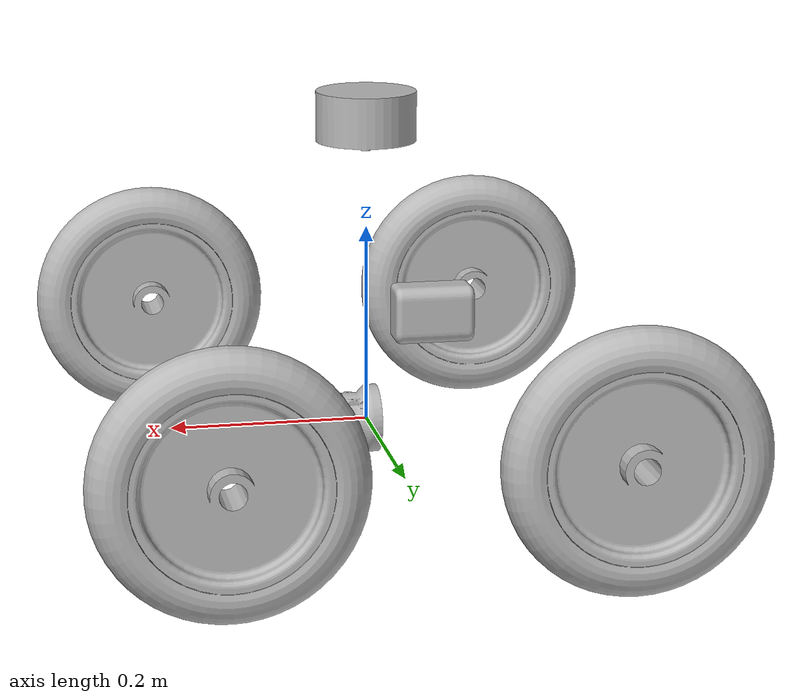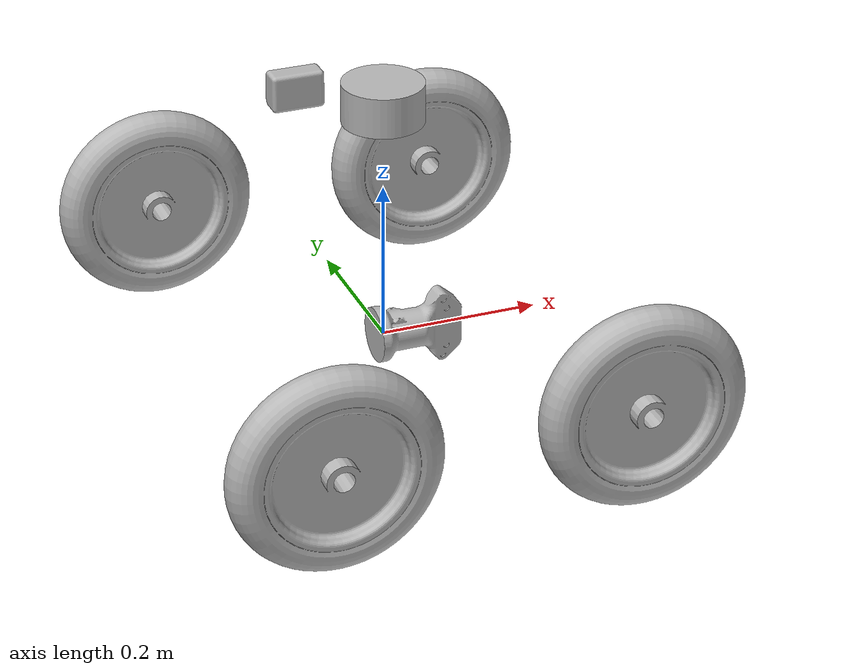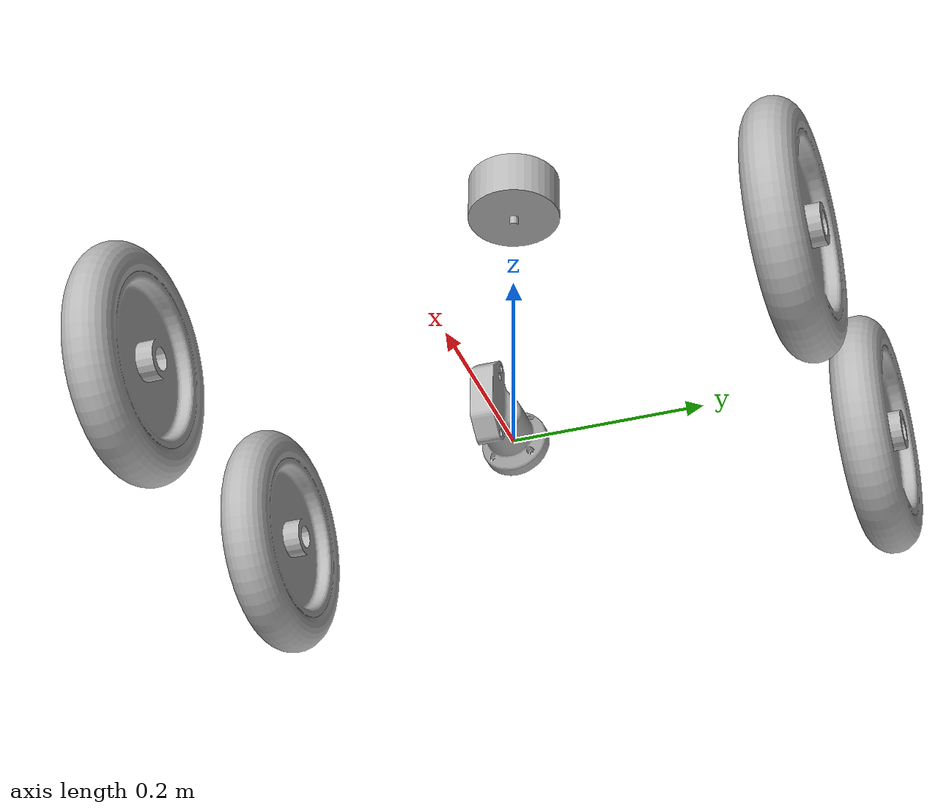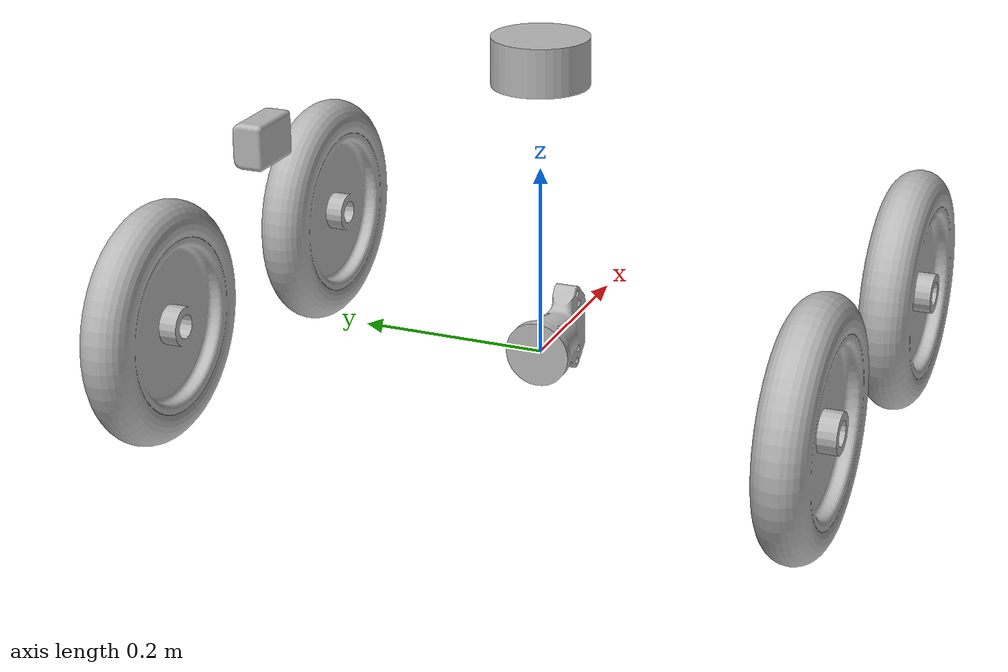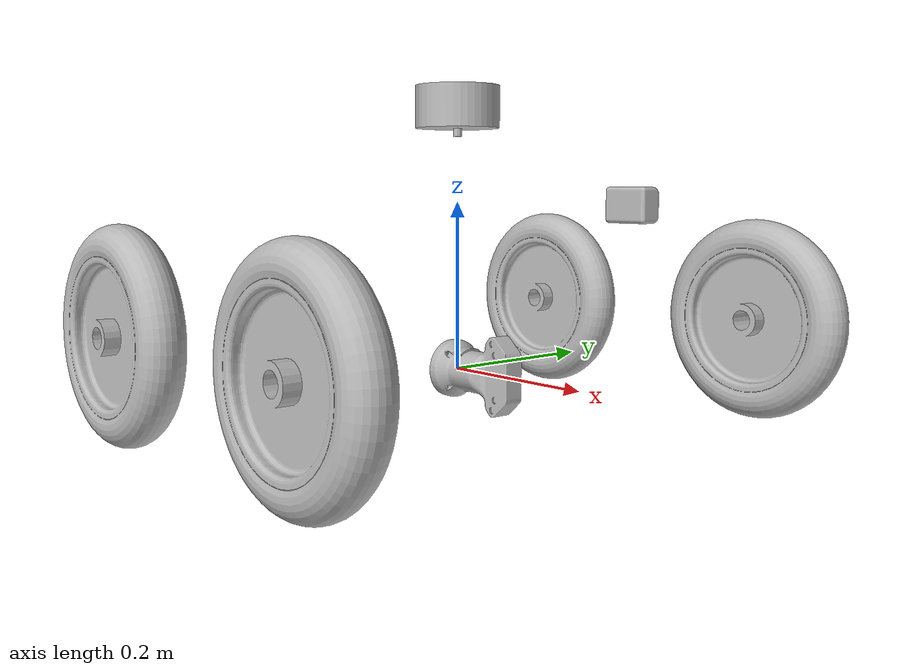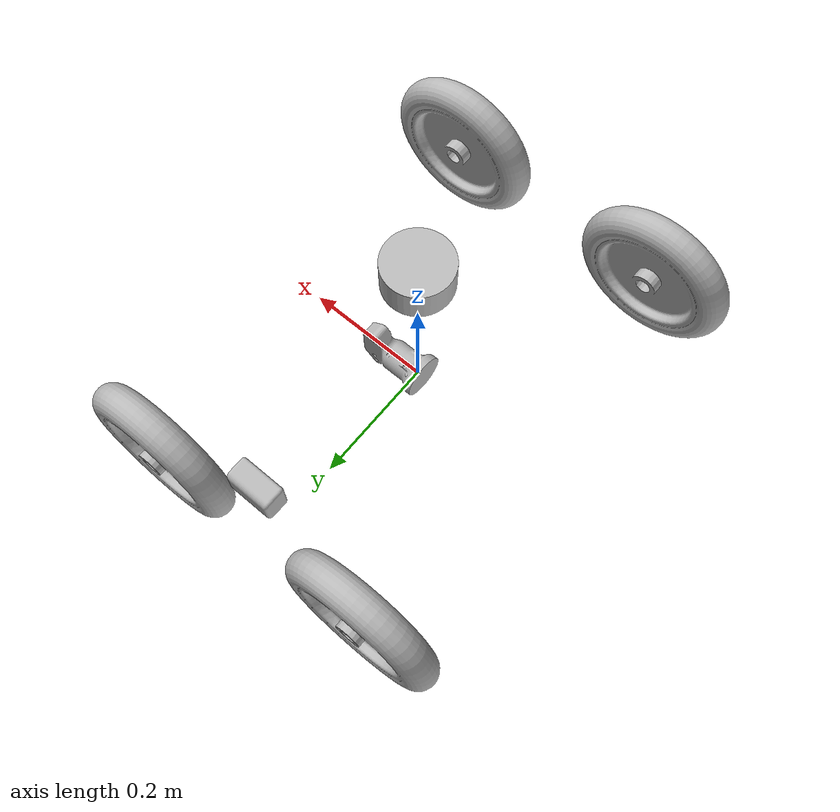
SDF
<sdf version='1.7'>
  <model name='my_bot'>
    <link name='base_link'>
      <inertial>
        <pose>0.010803 0.002865 0.178941 0 -0 0</pose>
        <mass>13.829</mass>
        <inertia>
          <ixx>0.33188</ixx>
          <ixy>0.000411165</ixy>
          <ixz>0.000451077</ixz>
          <iyy>0.275665</iyy>
          <iyz>-0.000559536</iyz>
          <izz>0.558828</izz>
        </inertia>
      </inertial>
      <collision name='base_link_collision'>
        <pose>0 0 0 0 -0 0</pose>
        <geometry>
          <mesh>
            <scale>1 1 1</scale>
            <uri>model://robot/meshes/base_link.STL</uri>
          </mesh>
        </geometry>
      </collision>
      <collision name='base_link_fixed_joint_lump__laser_frame_collision_1'>
        <pose>0 0 0.338 0 -0 0</pose>
        <geometry>
          <mesh>
            <scale>1 1 1</scale>
            <uri>model://robot/meshes/laser_frame.STL</uri>
          </mesh>
        </geometry>
      </collision>
      <collision name='base_link_fixed_joint_lump__rtk_collision_2'>
        <pose>0 0.335 0.193 0 -0 0</pose>
        <geometry>
          <mesh>
            <scale>1 1 1</scale>
            <uri>model://robot/meshes/rtk.STL</uri>
          </mesh>
        </geometry>
      </collision>
      <visual name='base_link_visual'>
        <pose>0 0 0 0 -0 0</pose>
        <geometry>
          <mesh>
            <scale>1 1 1</scale>
            <uri>model://robot/meshes/base_link.STL</uri>
          </mesh>
        </geometry>
      </visual>
      <visual name='base_link_fixed_joint_lump__laser_frame_visual_1'>
        <pose>0 0 0.338 0 -0 0</pose>
        <geometry>
          <mesh>
            <scale>1 1 1</scale>
            <uri>model://robot/meshes/laser_frame.STL</uri>
          </mesh>
        </geometry>
      </visual>
      <visual name='base_link_fixed_joint_lump__rtk_visual_2'>
        <pose>0 0.335 0.193 0 -0 0</pose>
        <geometry>
          <mesh>
            <scale>1 1 1</scale>
            <uri>model://robot/meshes/rtk.STL</uri>
          </mesh>
        </geometry>
      </visual>
    </link>
    <joint name='back_left_wheel_joint' type='revolute'>
      <pose relative_to='base_link'>-0.18566 0.37 0.0505 -1.5708 0 0</pose>
      <parent>base_link</parent>
      <child>back_left_wheel</child>
      <axis>
        <xyz>0 0 -1</xyz>
        <limit>
          <effort>1</effort>
          <velocity>1</velocity>
          <lower>-1e+16</lower>
          <upper>1e+16</upper>
        </limit>
        <dynamics>
          <spring_reference>0</spring_reference>
          <spring_stiffness>0</spring_stiffness>
        </dynamics>
      </axis>
    </joint>
    <link name='back_left_wheel'>
      <pose relative_to='back_left_wheel_joint'>0 0 0 0 -0 0</pose>
      <inertial>
        <pose>-0 -0 -0.029 0 -0 0</pose>
        <mass>1.76534</mass>
        <inertia>
          <ixx>0.00818088</ixx>
          <ixy>8.31222e-19</ixy>
          <ixz>1.55059e-19</ixz>
          <iyy>0.00818088</iyy>
          <iyz>2.65575e-17</iyz>
          <izz>0.0158039</izz>
        </inertia>
      </inertial>
      <collision name='back_left_wheel_collision'>
        <pose>0 0 0 0 -0 0</pose>
        <geometry>
          <mesh>
            <scale>1 1 1</scale>
            <uri>model://robot/meshes/back_left_wheel.STL</uri>
          </mesh>
        </geometry>
      </collision>
      <visual name='back_left_wheel_visual'>
        <pose>0 0 0 0 -0 0</pose>
        <geometry>
          <mesh>
            <scale>1 1 1</scale>
            <uri>model://robot/meshes/back_left_wheel.STL</uri>
          </mesh>
        </geometry>
      </visual>
    </link>
    <joint name='back_right_wheel_joint' type='revolute'>
      <pose relative_to='base_link'>-0.18566 -0.37 0.0505 1.5708 -0 0</pose>
      <parent>base_link</parent>
      <child>back_right_wheel</child>
      <axis>
        <xyz>0 0 1</xyz>
        <limit>
          <effort>1</effort>
          <velocity>1</velocity>
          <lower>-1e+16</lower>
          <upper>1e+16</upper>
        </limit>
        <dynamics>
          <spring_reference>0</spring_reference>
          <spring_stiffness>0</spring_stiffness>
        </dynamics>
      </axis>
    </joint>
    <link name='back_right_wheel'>
      <pose relative_to='back_right_wheel_joint'>0 0 0 0 -0 0</pose>
      <inertial>
        <pose>0 -0 -0.029 0 -0 0</pose>
        <mass>1.76534</mass>
        <inertia>
          <ixx>0.00818088</ixx>
          <ixy>-8.31222e-19</ixy>
          <ixz>-1.63529e-19</ixz>
          <iyy>0.00818088</iyy>
          <iyz>5.33493e-17</iyz>
          <izz>0.0158039</izz>
        </inertia>
      </inertial>
      <collision name='back_right_wheel_collision'>
        <pose>0 0 0 0 -0 0</pose>
        <geometry>
          <mesh>
            <scale>1 1 1</scale>
            <uri>model://robot/meshes/back_right_wheel.STL</uri>
          </mesh>
        </geometry>
      </collision>
      <visual name='back_right_wheel_visual'>
        <pose>0 0 0 0 -0 0</pose>
        <geometry>
          <mesh>
            <scale>1 1 1</scale>
            <uri>model://robot/meshes/back_right_wheel.STL</uri>
          </mesh>
        </geometry>
      </visual>
    </link>
    <joint name='front_left_wheel_joint' type='revolute'>
      <pose relative_to='base_link'>0.18566 0.37 0.0505 -1.5708 0 0</pose>
      <parent>base_link</parent>
      <child>front_left_wheel</child>
      <axis>
        <xyz>0 0 -1</xyz>
        <limit>
          <effort>1</effort>
          <velocity>1</velocity>
          <lower>-1e+16</lower>
          <upper>1e+16</upper>
        </limit>
        <dynamics>
          <spring_reference>0</spring_reference>
          <spring_stiffness>0</spring_stiffness>
        </dynamics>
      </axis>
    </joint>
    <link name='front_left_wheel'>
      <pose relative_to='front_left_wheel_joint'>0 0 0 0 -0 0</pose>
      <inertial>
        <pose>0 -0 -0.029 0 -0 0</pose>
        <mass>1.76534</mass>
        <inertia>
          <ixx>0.00818088</ixx>
          <ixy>1.17455e-18</ixy>
          <ixz>5.62383e-20</ixz>
          <iyy>0.00818088</iyy>
          <iyz>2.65575e-17</iyz>
          <izz>0.0158039</izz>
        </inertia>
      </inertial>
      <collision name='front_left_wheel_collision'>
        <pose>0 0 0 0 -0 0</pose>
        <geometry>
          <mesh>
            <scale>1 1 1</scale>
            <uri>model://robot/meshes/front_left_wheel.STL</uri>
          </mesh>
        </geometry>
      </collision>
      <visual name='front_left_wheel_visual'>
        <pose>0 0 0 0 -0 0</pose>
        <geometry>
          <mesh>
            <scale>1 1 1</scale>
            <uri>model://robot/meshes/front_left_wheel.STL</uri>
          </mesh>
        </geometry>
      </visual>
    </link>
    <joint name='front_right_wheel_joint' type='revolute'>
      <pose relative_to='base_link'>0.18566 -0.37 0.0505 1.5708 -0 0</pose>
      <parent>base_link</parent>
      <child>front_right_wheel</child>
      <axis>
        <xyz>0 0 1</xyz>
        <limit>
          <effort>1</effort>
          <velocity>1</velocity>
          <lower>-1e+16</lower>
          <upper>1e+16</upper>
        </limit>
        <dynamics>
          <spring_reference>0</spring_reference>
          <spring_stiffness>0</spring_stiffness>
        </dynamics>
      </axis>
    </joint>
    <link name='front_right_wheel'>
      <pose relative_to='front_right_wheel_joint'>0 0 0 0 -0 0</pose>
      <inertial>
        <pose>0 -0 -0.029 0 -0 0</pose>
        <mass>1.76534</mass>
        <inertia>
          <ixx>0.00818088</ixx>
          <ixy>1.55584e-18</ixy>
          <ixz>-1.57806e-20</ixz>
          <iyy>0.00818088</iyy>
          <iyz>2.76541e-17</iyz>
          <izz>0.0158039</izz>
        </inertia>
      </inertial>
      <collision name='front_right_wheel_collision'>
        <pose>0 0 0 0 -0 0</pose>
        <geometry>
          <mesh>
            <scale>1 1 1</scale>
            <uri>model://robot/meshes/front_right_wheel.STL</uri>
          </mesh>
        </geometry>
      </collision>
      <visual name='front_right_wheel_visual'>
        <pose>0 0 0 0 -0 0</pose>
        <geometry>
          <mesh>
            <scale>1 1 1</scale>
            <uri>model://robot/meshes/front_right_wheel.STL</uri>
          </mesh>
        </geometry>
      </visual>
    </link>
    <plugin name="skid_steer_drive" filename="libgazebo_ros_diff_drive.so">
         <ros>
          <!-- Set namespace -->

          <!-- Remap default topics -->
          <remapping>cmd_vel:=cmd_vel</remapping>
          <remapping>odom:=odom_demo</remapping>
        </ros>

         <updateRate>500.0</updateRate>
         <robotNamespace>/</robotNamespace>

         <num_wheel_pairs>2</num_wheel_pairs>

         <left_joint>front_left_wheel_joint</left_joint>
         <right_joint>front_right_wheel_joint</right_joint>
         <left_joint>back_left_wheel_joint</left_joint>
         <right_joint>back_right_wheel_joint</right_joint>

         <wheel_separation>0.730</wheel_separation>
         <wheel_separation>0.730</wheel_separation>

         <wheel_diameter>0.25</wheel_diameter>
         <wheel_diameter>0.25</wheel_diameter>

         <max_wheel_torque>20</max_wheel_torque>
         <max_wheel_acceleration>1.0</max_wheel_acceleration>

         <publish_odom>true</publish_odom>
        <publish_odom_tf>true</publish_odom_tf>
        <publish_wheel_tf>true</publish_wheel_tf>

        <odometry_frame>odom_demo</odometry_frame>
        <robot_base_frame>base_link</robot_base_frame>

      </plugin>
  </model>
</sdf>
